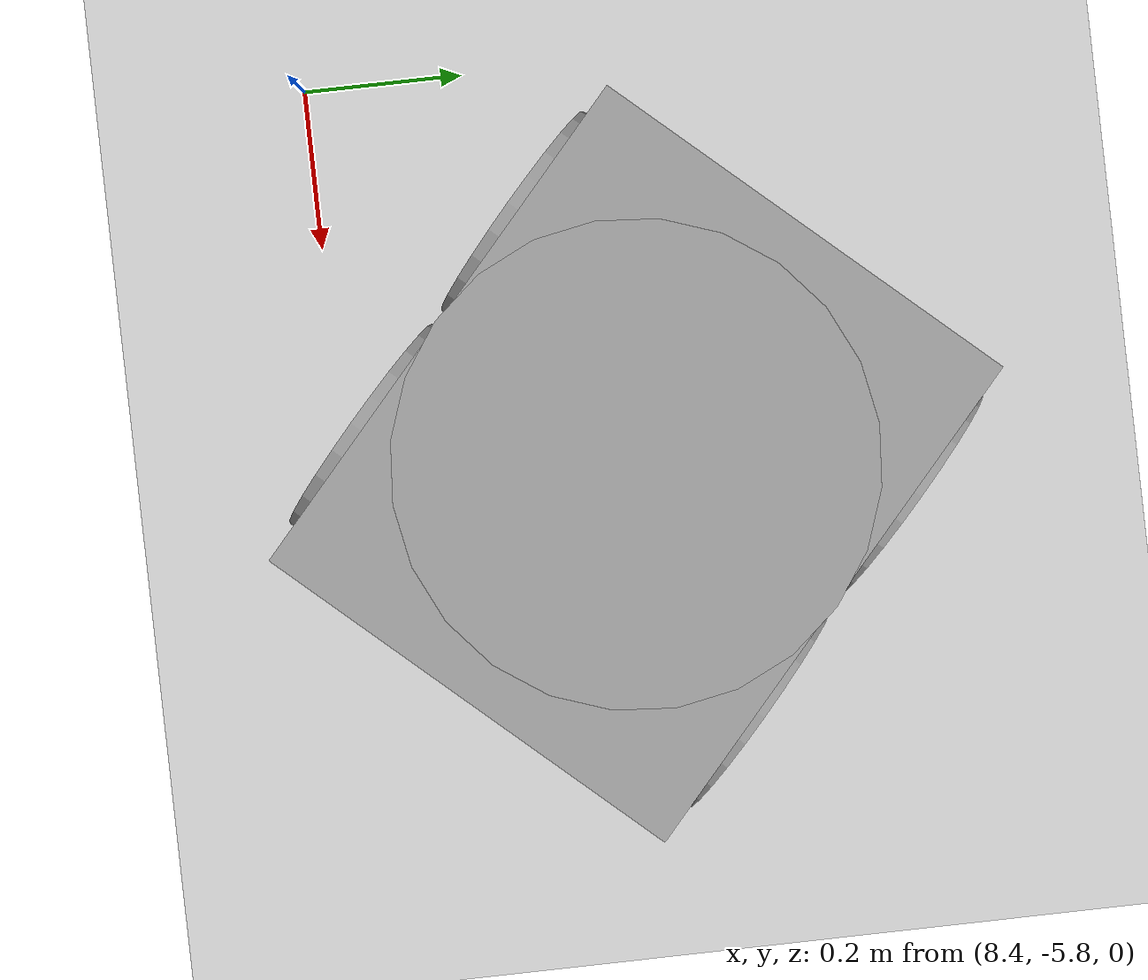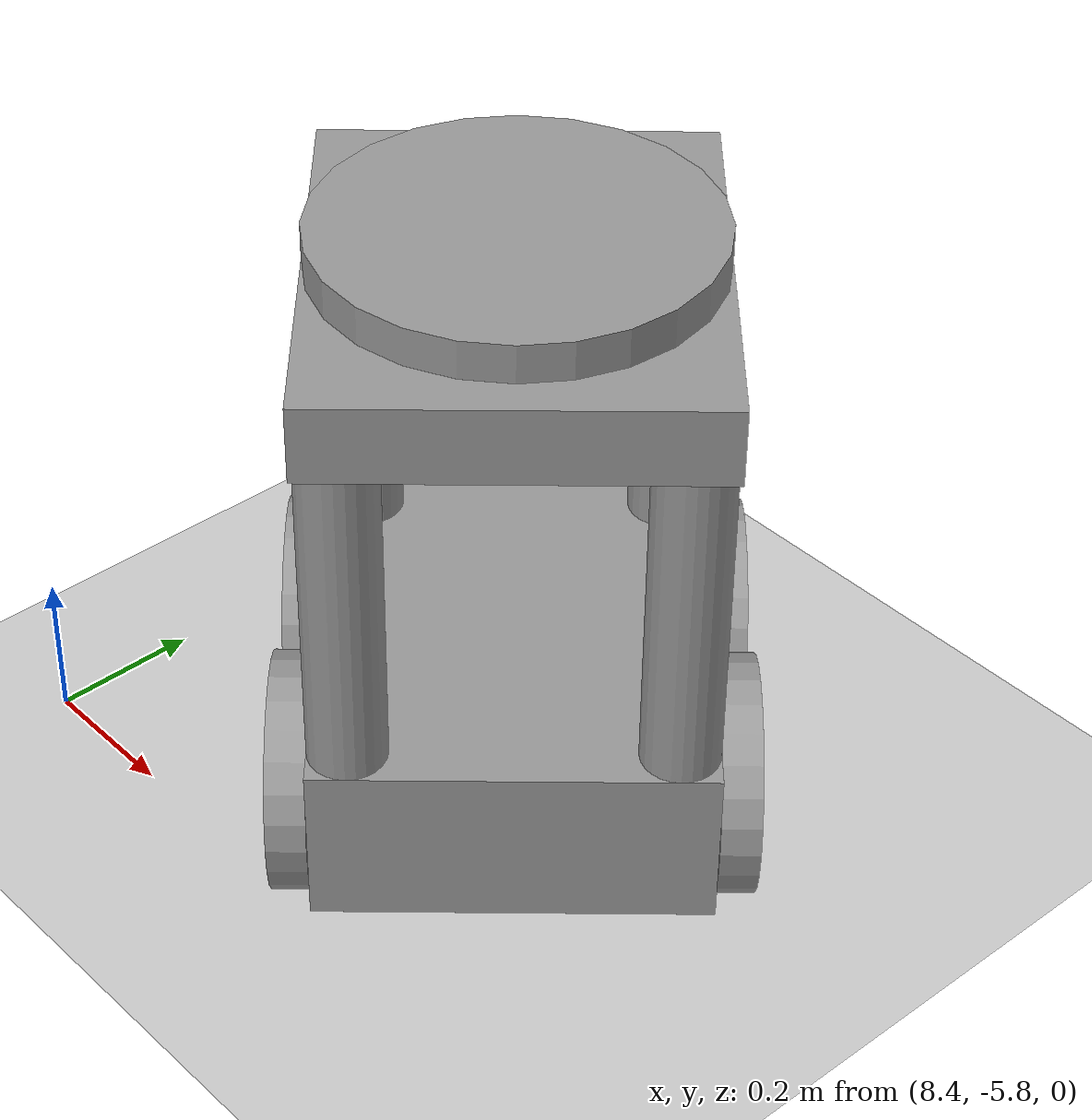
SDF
<sdf version="1.6">
 <world name="default">
  <model name="ground_plane">
   <static>1</static>
   <link name="link">
    <collision name="collision">
     <geometry><plane><normal>0 0 1</normal><size>100 100</size></plane></geometry>
     <surface><friction><ode><mu>100</mu><mu2>50</mu2></ode></friction></surface>
    </collision>
    <visual name="visual">
     <cast_shadows>0</cast_shadows>
     <geometry><plane><normal>0 0 1</normal><size>100 100</size></plane></geometry>
     <material>
      <script><uri>file://media/materials/scripts/gazebo.material</uri><name>Gazebo/Grey</name></script>
     </material>
    </visual>
   </link>
  </model>
  <model name="exp_robot_0">
   <link name="link_0">
    <pose>-0 -0 -0.235909 0 -0 0</pose>
    <inertial>
     <mass>1</mass>
     <inertia>
      <ixx>0.166667</ixx>
      <ixy>0</ixy>
      <ixz>0</ixz>
      <iyy>0.166667</iyy>
      <iyz>0</iyz>
      <izz>0.166667</izz>
     </inertia>
    </inertial>
    <visual name="visual">
     <geometry><box><size>0.6 0.5 0.22</size></box></geometry>
     <material>
      <lighting>1</lighting>
      <script><uri>file://media/materials/scripts/gazebo.material</uri><name>Gazebo/Grey</name></script>
      <ambient>0.1 0.1 0.1 1</ambient>
      <diffuse>0.7 0.7 0.7 1</diffuse>
      <specular>0.01 0.01 0.01 1</specular>
      <emissive>0 0 0 1</emissive>
      <shader type="vertex"><normal_map>__default__</normal_map></shader>
     </material>
    </visual>
    <collision name="collision">
     <geometry><box><size>0.6 0.5 0.22</size></box></geometry>
     <surface>
      <friction>
       <ode><mu>1</mu><mu2>1</mu2><fdir1>0 0 0</fdir1><slip1>0</slip1><slip2>0</slip2></ode>
       <torsional>
        <coefficient>1</coefficient>
        <patch_radius>0</patch_radius>
        <surface_radius>0</surface_radius>
        <use_patch_radius>1</use_patch_radius>
        <ode><slip>0</slip></ode>
       </torsional>
      </friction>
      <bounce><restitution_coefficient>0</restitution_coefficient><threshold>1e+06</threshold></bounce>
      <contact>
       <collide_without_contact>0</collide_without_contact>
       <collide_without_contact_bitmask>1</collide_without_contact_bitmask>
       <collide_bitmask>1</collide_bitmask>
       <ode>
        <soft_cfm>0</soft_cfm>
        <soft_erp>0.2</soft_erp>
        <kp>1e+13</kp>
        <kd>1</kd>
        <max_vel>0.01</max_vel>
        <min_depth>0</min_depth>
       </ode>
       <bullet>
        <split_impulse>1</split_impulse>
        <split_impulse_penetration_threshold>-0.01</split_impulse_penetration_threshold>
        <soft_cfm>0</soft_cfm>
        <soft_erp>0.2</soft_erp>
        <kp>1e+13</kp>
        <kd>1</kd>
       </bullet>
      </contact>
     </surface>
    </collision>
   </link>
   <link name="link_0_clone">
    <pose>0 -0 0.364091 0 -0 0</pose>
    <inertial>
     <mass>1</mass>
     <inertia>
      <ixx>0.166667</ixx>
      <ixy>0</ixy>
      <ixz>0</ixz>
      <iyy>0.166667</iyy>
      <iyz>0</iyz>
      <izz>0.166667</izz>
     </inertia>
    </inertial>
    <visual name="visual">
     <geometry><box><size>0.6 0.5 0.1</size></box></geometry>
     <material>
      <lighting>1</lighting>
      <script><uri>file://media/materials/scripts/gazebo.material</uri><name>Gazebo/Grey</name></script>
      <ambient>0.3 0.3 0.3 1</ambient>
      <diffuse>0.7 0.7 0.7 1</diffuse>
      <specular>0.01 0.01 0.01 1</specular>
      <emissive>0 0 0 1</emissive>
      <shader type="vertex"><normal_map>__default__</normal_map></shader>
     </material>
    </visual>
    <collision name="collision">
     <geometry><box><size>0.6 0.5 0.1</size></box></geometry>
     <surface>
      <friction>
       <ode><mu>1</mu><mu2>1</mu2><fdir1>0 0 0</fdir1><slip1>0</slip1><slip2>0</slip2></ode>
       <torsional>
        <coefficient>1</coefficient>
        <patch_radius>0</patch_radius>
        <surface_radius>0</surface_radius>
        <use_patch_radius>1</use_patch_radius>
        <ode><slip>0</slip></ode>
       </torsional>
      </friction>
      <bounce><restitution_coefficient>0</restitution_coefficient><threshold>1e+06</threshold></bounce>
      <contact>
       <collide_without_contact>0</collide_without_contact>
       <collide_without_contact_bitmask>1</collide_without_contact_bitmask>
       <collide_bitmask>1</collide_bitmask>
       <ode>
        <soft_cfm>0</soft_cfm>
        <soft_erp>0.2</soft_erp>
        <kp>1e+13</kp>
        <kd>1</kd>
        <max_vel>0.01</max_vel>
        <min_depth>0</min_depth>
       </ode>
       <bullet>
        <split_impulse>1</split_impulse>
        <split_impulse_penetration_threshold>-0.01</split_impulse_penetration_threshold>
        <soft_cfm>0</soft_cfm>
        <soft_erp>0.2</soft_erp>
        <kp>1e+13</kp>
        <kd>1</kd>
       </bullet>
      </contact>
     </surface>
    </collision>
   </link>
   <link name="link_1">
    <pose>-0.25 0.2 0.094091 0 -0 0</pose>
    <inertial>
     <mass>1</mass>
     <inertia><ixx>0.145833</ixx><ixy>0</ixy><ixz>0</ixz><iyy>0.145833</iyy><iyz>0</iyz><izz>0.125</izz></inertia>
    </inertial>
    <visual name="visual">
     <geometry><cylinder><radius>0.05</radius><length>0.44</length></cylinder></geometry>
     <material>
      <lighting>1</lighting>
      <script><uri>file://media/materials/scripts/gazebo.material</uri><name>Gazebo/Grey</name></script>
      <ambient>0.3 0.3 0.3 1</ambient>
      <diffuse>0.7 0.7 0.7 1</diffuse>
      <specular>0.01 0.01 0.01 1</specular>
      <emissive>0 0 0 1</emissive>
      <shader type="vertex"><normal_map>__default__</normal_map></shader>
     </material>
    </visual>
    <collision name="collision">
     <geometry><cylinder><radius>0.05</radius><length>0.44</length></cylinder></geometry>
     <surface>
      <friction>
       <ode><mu>1</mu><mu2>1</mu2><fdir1>0 0 0</fdir1><slip1>0</slip1><slip2>0</slip2></ode>
       <torsional>
        <coefficient>1</coefficient>
        <patch_radius>0</patch_radius>
        <surface_radius>0</surface_radius>
        <use_patch_radius>1</use_patch_radius>
        <ode><slip>0</slip></ode>
       </torsional>
      </friction>
      <bounce><restitution_coefficient>0</restitution_coefficient><threshold>1e+06</threshold></bounce>
      <contact>
       <collide_without_contact>0</collide_without_contact>
       <collide_without_contact_bitmask>1</collide_without_contact_bitmask>
       <collide_bitmask>1</collide_bitmask>
       <ode>
        <soft_cfm>0</soft_cfm>
        <soft_erp>0.2</soft_erp>
        <kp>1e+13</kp>
        <kd>1</kd>
        <max_vel>0.01</max_vel>
        <min_depth>0</min_depth>
       </ode>
       <bullet>
        <split_impulse>1</split_impulse>
        <split_impulse_penetration_threshold>-0.01</split_impulse_penetration_threshold>
        <soft_cfm>0</soft_cfm>
        <soft_erp>0.2</soft_erp>
        <kp>1e+13</kp>
        <kd>1</kd>
       </bullet>
      </contact>
     </surface>
    </collision>
   </link>
   <link name="link_1_clone">
    <pose>-0.25 -0.2 0.094091 0 -0 0</pose>
    <inertial>
     <mass>1</mass>
     <inertia><ixx>0.145833</ixx><ixy>0</ixy><ixz>0</ixz><iyy>0.145833</iyy><iyz>0</iyz><izz>0.125</izz></inertia>
    </inertial>
    <visual name="visual">
     <geometry><cylinder><radius>0.05</radius><length>0.44</length></cylinder></geometry>
     <material>
      <lighting>1</lighting>
      <script><uri>file://media/materials/scripts/gazebo.material</uri><name>Gazebo/Grey</name></script>
      <ambient>0.3 0.3 0.3 1</ambient>
      <diffuse>0.7 0.7 0.7 1</diffuse>
      <specular>0.01 0.01 0.01 1</specular>
      <emissive>0 0 0 1</emissive>
      <shader type="vertex"><normal_map>__default__</normal_map></shader>
     </material>
    </visual>
    <collision name="collision">
     <geometry><cylinder><radius>0.05</radius><length>0.44</length></cylinder></geometry>
     <surface>
      <friction>
       <ode><mu>1</mu><mu2>1</mu2><fdir1>0 0 0</fdir1><slip1>0</slip1><slip2>0</slip2></ode>
       <torsional>
        <coefficient>1</coefficient>
        <patch_radius>0</patch_radius>
        <surface_radius>0</surface_radius>
        <use_patch_radius>1</use_patch_radius>
        <ode><slip>0</slip></ode>
       </torsional>
      </friction>
      <bounce><restitution_coefficient>0</restitution_coefficient><threshold>1e+06</threshold></bounce>
      <contact>
       <collide_without_contact>0</collide_without_contact>
       <collide_without_contact_bitmask>1</collide_without_contact_bitmask>
       <collide_bitmask>1</collide_bitmask>
       <ode>
        <soft_cfm>0</soft_cfm>
        <soft_erp>0.2</soft_erp>
        <kp>1e+13</kp>
        <kd>1</kd>
        <max_vel>0.01</max_vel>
        <min_depth>0</min_depth>
       </ode>
       <bullet>
        <split_impulse>1</split_impulse>
        <split_impulse_penetration_threshold>-0.01</split_impulse_penetration_threshold>
        <soft_cfm>0</soft_cfm>
        <soft_erp>0.2</soft_erp>
        <kp>1e+13</kp>
        <kd>1</kd>
       </bullet>
      </contact>
     </surface>
    </collision>
   </link>
   <link name="link_1_clone_0">
    <pose>0.25 -0.2 0.094091 0 -0 0</pose>
    <inertial>
     <mass>1</mass>
     <inertia><ixx>0.145833</ixx><ixy>0</ixy><ixz>0</ixz><iyy>0.145833</iyy><iyz>0</iyz><izz>0.125</izz></inertia>
    </inertial>
    <visual name="visual">
     <geometry><cylinder><radius>0.05</radius><length>0.44</length></cylinder></geometry>
     <material>
      <lighting>1</lighting>
      <script><uri>file://media/materials/scripts/gazebo.material</uri><name>Gazebo/Grey</name></script>
      <ambient>0.3 0.3 0.3 1</ambient>
      <diffuse>0.7 0.7 0.7 1</diffuse>
      <specular>0.01 0.01 0.01 1</specular>
      <emissive>0 0 0 1</emissive>
      <shader type="vertex"><normal_map>__default__</normal_map></shader>
     </material>
    </visual>
    <collision name="collision">
     <geometry><cylinder><radius>0.05</radius><length>0.44</length></cylinder></geometry>
     <surface>
      <friction>
       <ode><mu>1</mu><mu2>1</mu2><fdir1>0 0 0</fdir1><slip1>0</slip1><slip2>0</slip2></ode>
       <torsional>
        <coefficient>1</coefficient>
        <patch_radius>0</patch_radius>
        <surface_radius>0</surface_radius>
        <use_patch_radius>1</use_patch_radius>
        <ode><slip>0</slip></ode>
       </torsional>
      </friction>
      <bounce><restitution_coefficient>0</restitution_coefficient><threshold>1e+06</threshold></bounce>
      <contact>
       <collide_without_contact>0</collide_without_contact>
       <collide_without_contact_bitmask>1</collide_without_contact_bitmask>
       <collide_bitmask>1</collide_bitmask>
       <ode>
        <soft_cfm>0</soft_cfm>
        <soft_erp>0.2</soft_erp>
        <kp>1e+13</kp>
        <kd>1</kd>
        <max_vel>0.01</max_vel>
        <min_depth>0</min_depth>
       </ode>
       <bullet>
        <split_impulse>1</split_impulse>
        <split_impulse_penetration_threshold>-0.01</split_impulse_penetration_threshold>
        <soft_cfm>0</soft_cfm>
        <soft_erp>0.2</soft_erp>
        <kp>1e+13</kp>
        <kd>1</kd>
       </bullet>
      </contact>
     </surface>
    </collision>
   </link>
   <link name="link_1_clone_1">
    <pose>0.25 0.2 0.094091 0 -0 0</pose>
    <inertial>
     <mass>1</mass>
     <inertia><ixx>0.145833</ixx><ixy>0</ixy><ixz>0</ixz><iyy>0.145833</iyy><iyz>0</iyz><izz>0.125</izz></inertia>
    </inertial>
    <visual name="visual">
     <geometry><cylinder><radius>0.05</radius><length>0.44</length></cylinder></geometry>
     <material>
      <lighting>1</lighting>
      <script><uri>file://media/materials/scripts/gazebo.material</uri><name>Gazebo/Grey</name></script>
      <ambient>0.3 0.3 0.3 1</ambient>
      <diffuse>0.7 0.7 0.7 1</diffuse>
      <specular>0.01 0.01 0.01 1</specular>
      <emissive>0 0 0 1</emissive>
      <shader type="vertex"><normal_map>__default__</normal_map></shader>
     </material>
    </visual>
    <collision name="collision">
     <geometry><cylinder><radius>0.05</radius><length>0.44</length></cylinder></geometry>
     <surface>
      <friction>
       <ode><mu>1</mu><mu2>1</mu2><fdir1>0 0 0</fdir1><slip1>0</slip1><slip2>0</slip2></ode>
       <torsional>
        <coefficient>1</coefficient>
        <patch_radius>0</patch_radius>
        <surface_radius>0</surface_radius>
        <use_patch_radius>1</use_patch_radius>
        <ode><slip>0</slip></ode>
       </torsional>
      </friction>
      <bounce><restitution_coefficient>0</restitution_coefficient><threshold>1e+06</threshold></bounce>
      <contact>
       <collide_without_contact>0</collide_without_contact>
       <collide_without_contact_bitmask>1</collide_without_contact_bitmask>
       <collide_bitmask>1</collide_bitmask>
       <ode>
        <soft_cfm>0</soft_cfm>
        <soft_erp>0.2</soft_erp>
        <kp>1e+13</kp>
        <kd>1</kd>
        <max_vel>0.01</max_vel>
        <min_depth>0</min_depth>
       </ode>
       <bullet>
        <split_impulse>1</split_impulse>
        <split_impulse_penetration_threshold>-0.01</split_impulse_penetration_threshold>
        <soft_cfm>0</soft_cfm>
        <soft_erp>0.2</soft_erp>
        <kp>1e+13</kp>
        <kd>1</kd>
       </bullet>
      </contact>
     </surface>
    </collision>
   </link>
   <link name="link_2">
    <pose>-0 0 0.439091 0 -0 0</pose>
    <inertial>
     <mass>1</mass>
     <inertia><ixx>0.145833</ixx><ixy>0</ixy><ixz>0</ixz><iyy>0.145833</iyy><iyz>0</iyz><izz>0.125</izz></inertia>
    </inertial>
    <visual name="visual">
     <geometry><cylinder><radius>0.25</radius><length>0.05</length></cylinder></geometry>
     <material>
      <lighting>1</lighting>
      <script><uri>file://media/materials/scripts/gazebo.material</uri><name>Gazebo/Grey</name></script>
      <ambient>0.3 0.3 0.3 1</ambient>
      <diffuse>0.7 0.7 0.7 1</diffuse>
      <specular>0.01 0.01 0.01 1</specular>
      <emissive>0 0 0 1</emissive>
      <shader type="vertex"><normal_map>__default__</normal_map></shader>
     </material>
    </visual>
    <collision name="collision">
     <geometry><cylinder><radius>0.25</radius><length>0.05</length></cylinder></geometry>
     <surface>
      <friction>
       <ode><mu>1</mu><mu2>1</mu2><fdir1>0 0 0</fdir1><slip1>0</slip1><slip2>0</slip2></ode>
       <torsional>
        <coefficient>1</coefficient>
        <patch_radius>0</patch_radius>
        <surface_radius>0</surface_radius>
        <use_patch_radius>1</use_patch_radius>
        <ode><slip>0</slip></ode>
       </torsional>
      </friction>
      <bounce><restitution_coefficient>0</restitution_coefficient><threshold>1e+06</threshold></bounce>
      <contact>
       <collide_without_contact>0</collide_without_contact>
       <collide_without_contact_bitmask>1</collide_without_contact_bitmask>
       <collide_bitmask>1</collide_bitmask>
       <ode>
        <soft_cfm>0</soft_cfm>
        <soft_erp>0.2</soft_erp>
        <kp>1e+13</kp>
        <kd>1</kd>
        <max_vel>0.01</max_vel>
        <min_depth>0</min_depth>
       </ode>
       <bullet>
        <split_impulse>1</split_impulse>
        <split_impulse_penetration_threshold>-0.01</split_impulse_penetration_threshold>
        <soft_cfm>0</soft_cfm>
        <soft_erp>0.2</soft_erp>
        <kp>1e+13</kp>
        <kd>1</kd>
       </bullet>
      </contact>
     </surface>
    </collision>
   </link>
   <link name="link_3">
    <pose>0.16 -0.275014 -0.235909 1.5707 -0 0</pose>
    <inertial>
     <mass>1</mass>
     <inertia><ixx>0.145833</ixx><ixy>0</ixy><ixz>0</ixz><iyy>0.145833</iyy><iyz>0</iyz><izz>0.125</izz></inertia>
    </inertial>
    <visual name="visual">
     <geometry><cylinder><radius>0.15</radius><length>0.05</length></cylinder></geometry>
     <material>
      <lighting>1</lighting>
      <script><uri>file://media/materials/scripts/gazebo.material</uri><name>Gazebo/Grey</name></script>
      <ambient>0.3 0.3 0.3 1</ambient>
      <diffuse>0.7 0.7 0.7 1</diffuse>
      <specular>0.01 0.01 0.01 1</specular>
      <emissive>0 0 0 1</emissive>
      <shader type="vertex"><normal_map>__default__</normal_map></shader>
     </material>
    </visual>
    <collision name="collision">
     <geometry><cylinder><radius>0.15</radius><length>0.05</length></cylinder></geometry>
     <surface>
      <friction>
       <ode><mu>1</mu><mu2>1</mu2><fdir1>0 0 0</fdir1><slip1>0</slip1><slip2>0</slip2></ode>
       <torsional>
        <coefficient>1</coefficient>
        <patch_radius>0</patch_radius>
        <surface_radius>0</surface_radius>
        <use_patch_radius>1</use_patch_radius>
        <ode><slip>0</slip></ode>
       </torsional>
      </friction>
      <bounce><restitution_coefficient>0</restitution_coefficient><threshold>1e+06</threshold></bounce>
      <contact>
       <collide_without_contact>0</collide_without_contact>
       <collide_without_contact_bitmask>1</collide_without_contact_bitmask>
       <collide_bitmask>1</collide_bitmask>
       <ode>
        <soft_cfm>0</soft_cfm>
        <soft_erp>0.2</soft_erp>
        <kp>1e+13</kp>
        <kd>1</kd>
        <max_vel>0.01</max_vel>
        <min_depth>0</min_depth>
       </ode>
       <bullet>
        <split_impulse>1</split_impulse>
        <split_impulse_penetration_threshold>-0.01</split_impulse_penetration_threshold>
        <soft_cfm>0</soft_cfm>
        <soft_erp>0.2</soft_erp>
        <kp>1e+13</kp>
        <kd>1</kd>
       </bullet>
      </contact>
     </surface>
    </collision>
   </link>
   <link name="link_3_clone">
    <pose>0.16 0.275014 -0.235909 1.5707 -0 0</pose>
    <inertial>
     <mass>1</mass>
     <inertia><ixx>0.145833</ixx><ixy>0</ixy><ixz>0</ixz><iyy>0.145833</iyy><iyz>0</iyz><izz>0.125</izz></inertia>
    </inertial>
    <visual name="visual">
     <geometry><cylinder><radius>0.15</radius><length>0.05</length></cylinder></geometry>
     <material>
      <lighting>1</lighting>
      <script><uri>file://media/materials/scripts/gazebo.material</uri><name>Gazebo/Grey</name></script>
      <ambient>0.3 0.3 0.3 1</ambient>
      <diffuse>0.7 0.7 0.7 1</diffuse>
      <specular>0.01 0.01 0.01 1</specular>
      <emissive>0 0 0 1</emissive>
      <shader type="vertex"><normal_map>__default__</normal_map></shader>
     </material>
    </visual>
    <collision name="collision">
     <geometry><cylinder><radius>0.15</radius><length>0.05</length></cylinder></geometry>
     <surface>
      <friction>
       <ode><mu>1</mu><mu2>1</mu2><fdir1>0 0 0</fdir1><slip1>0</slip1><slip2>0</slip2></ode>
       <torsional>
        <coefficient>1</coefficient>
        <patch_radius>0</patch_radius>
        <surface_radius>0</surface_radius>
        <use_patch_radius>1</use_patch_radius>
        <ode><slip>0</slip></ode>
       </torsional>
      </friction>
      <bounce><restitution_coefficient>0</restitution_coefficient><threshold>1e+06</threshold></bounce>
      <contact>
       <collide_without_contact>0</collide_without_contact>
       <collide_without_contact_bitmask>1</collide_without_contact_bitmask>
       <collide_bitmask>1</collide_bitmask>
       <ode>
        <soft_cfm>0</soft_cfm>
        <soft_erp>0.2</soft_erp>
        <kp>1e+13</kp>
        <kd>1</kd>
        <max_vel>0.01</max_vel>
        <min_depth>0</min_depth>
       </ode>
       <bullet>
        <split_impulse>1</split_impulse>
        <split_impulse_penetration_threshold>-0.01</split_impulse_penetration_threshold>
        <soft_cfm>0</soft_cfm>
        <soft_erp>0.2</soft_erp>
        <kp>1e+13</kp>
        <kd>1</kd>
       </bullet>
      </contact>
     </surface>
    </collision>
   </link>
   <link name="link_3_clone_0">
    <pose>-0.16 0.275014 -0.235909 1.5707 -0 0</pose>
    <inertial>
     <mass>1</mass>
     <inertia><ixx>0.145833</ixx><ixy>0</ixy><ixz>0</ixz><iyy>0.145833</iyy><iyz>0</iyz><izz>0.125</izz></inertia>
    </inertial>
    <visual name="visual">
     <geometry><cylinder><radius>0.15</radius><length>0.05</length></cylinder></geometry>
     <material>
      <lighting>1</lighting>
      <script><uri>file://media/materials/scripts/gazebo.material</uri><name>Gazebo/Grey</name></script>
      <ambient>0.3 0.3 0.3 1</ambient>
      <diffuse>0.7 0.7 0.7 1</diffuse>
      <specular>0.01 0.01 0.01 1</specular>
      <emissive>0 0 0 1</emissive>
      <shader type="vertex"><normal_map>__default__</normal_map></shader>
     </material>
    </visual>
    <collision name="collision">
     <geometry><cylinder><radius>0.15</radius><length>0.05</length></cylinder></geometry>
     <surface>
      <friction>
       <ode><mu>1</mu><mu2>1</mu2><fdir1>0 0 0</fdir1><slip1>0</slip1><slip2>0</slip2></ode>
       <torsional>
        <coefficient>1</coefficient>
        <patch_radius>0</patch_radius>
        <surface_radius>0</surface_radius>
        <use_patch_radius>1</use_patch_radius>
        <ode><slip>0</slip></ode>
       </torsional>
      </friction>
      <bounce><restitution_coefficient>0</restitution_coefficient><threshold>1e+06</threshold></bounce>
      <contact>
       <collide_without_contact>0</collide_without_contact>
       <collide_without_contact_bitmask>1</collide_without_contact_bitmask>
       <collide_bitmask>1</collide_bitmask>
       <ode>
        <soft_cfm>0</soft_cfm>
        <soft_erp>0.2</soft_erp>
        <kp>1e+13</kp>
        <kd>1</kd>
        <max_vel>0.01</max_vel>
        <min_depth>0</min_depth>
       </ode>
       <bullet>
        <split_impulse>1</split_impulse>
        <split_impulse_penetration_threshold>-0.01</split_impulse_penetration_threshold>
        <soft_cfm>0</soft_cfm>
        <soft_erp>0.2</soft_erp>
        <kp>1e+13</kp>
        <kd>1</kd>
       </bullet>
      </contact>
     </surface>
    </collision>
   </link>
   <link name="link_3_clone_1">
    <pose>-0.16 -0.275014 -0.235909 1.5707 -0 0</pose>
    <inertial>
     <mass>1</mass>
     <inertia><ixx>0.145833</ixx><ixy>0</ixy><ixz>0</ixz><iyy>0.145833</iyy><iyz>0</iyz><izz>0.125</izz></inertia>
    </inertial>
    <visual name="visual">
     <geometry><cylinder><radius>0.15</radius><length>0.05</length></cylinder></geometry>
     <material>
      <lighting>1</lighting>
      <script><uri>file://media/materials/scripts/gazebo.material</uri><name>Gazebo/Grey</name></script>
      <ambient>0.3 0.3 0.3 1</ambient>
      <diffuse>0.7 0.7 0.7 1</diffuse>
      <specular>0.01 0.01 0.01 1</specular>
      <emissive>0 0 0 1</emissive>
      <shader type="vertex"><normal_map>__default__</normal_map></shader>
     </material>
    </visual>
    <collision name="collision">
     <geometry><cylinder><radius>0.15</radius><length>0.05</length></cylinder></geometry>
     <surface>
      <friction>
       <ode><mu>1</mu><mu2>1</mu2><fdir1>0 0 0</fdir1><slip1>0</slip1><slip2>0</slip2></ode>
       <torsional>
        <coefficient>1</coefficient>
        <patch_radius>0</patch_radius>
        <surface_radius>0</surface_radius>
        <use_patch_radius>1</use_patch_radius>
        <ode><slip>0</slip></ode>
       </torsional>
      </friction>
      <bounce><restitution_coefficient>0</restitution_coefficient><threshold>1e+06</threshold></bounce>
      <contact>
       <collide_without_contact>0</collide_without_contact>
       <collide_without_contact_bitmask>1</collide_without_contact_bitmask>
       <collide_bitmask>1</collide_bitmask>
       <ode>
        <soft_cfm>0</soft_cfm>
        <soft_erp>0.2</soft_erp>
        <kp>1e+13</kp>
        <kd>1</kd>
        <max_vel>0.01</max_vel>
        <min_depth>0</min_depth>
       </ode>
       <bullet>
        <split_impulse>1</split_impulse>
        <split_impulse_penetration_threshold>-0.01</split_impulse_penetration_threshold>
        <soft_cfm>0</soft_cfm>
        <soft_erp>0.2</soft_erp>
        <kp>1e+13</kp>
        <kd>1</kd>
       </bullet>
      </contact>
     </surface>
    </collision>
   </link>
   <joint name="link_0_JOINT_0" type="fixed">
    <parent>link_0</parent>
    <child>link_1_clone_1</child>
    <physics>
     <ode><limit><cfm>0</cfm><erp>0.2</erp></limit><suspension><cfm>0</cfm><erp>0.2</erp></suspension></ode>
    </physics>
   </joint>
   <joint name="link_0_JOINT_1" type="fixed">
    <parent>link_0</parent>
    <child>link_1_clone_0</child>
    <physics>
     <ode><limit><cfm>0</cfm><erp>0.2</erp></limit><suspension><cfm>0</cfm><erp>0.2</erp></suspension></ode>
    </physics>
   </joint>
   <joint name="link_0_JOINT_2" type="fixed">
    <parent>link_0</parent>
    <child>link_1_clone</child>
    <physics>
     <ode><limit><cfm>0</cfm><erp>0.2</erp></limit><suspension><cfm>0</cfm><erp>0.2</erp></suspension></ode>
    </physics>
   </joint>
   <joint name="link_0_JOINT_3" type="fixed">
    <parent>link_0</parent>
    <child>link_1</child>
    <physics>
     <ode><limit><cfm>0</cfm><erp>0.2</erp></limit><suspension><cfm>0</cfm><erp>0.2</erp></suspension></ode>
    </physics>
   </joint>
   <joint name="link_0_JOINT_4" type="fixed">
    <parent>link_0</parent>
    <child>link_0_clone</child>
    <physics>
     <ode><limit><cfm>0</cfm><erp>0.2</erp></limit><suspension><cfm>0</cfm><erp>0.2</erp></suspension></ode>
    </physics>
   </joint>
   <joint name="link_0_JOINT_6" type="revolute">
    <parent>link_0</parent>
    <child>link_3</child>
    <axis>
     <xyz>0 0 1</xyz>
     <use_parent_model_frame>0</use_parent_model_frame>
     <limit>
      <lower>-1.79769e+308</lower>
      <upper>1.79769e+308</upper>
      <effort>-1</effort>
      <velocity>-1</velocity>
     </limit>
     <dynamics>
      <spring_reference>0</spring_reference>
      <spring_stiffness>0</spring_stiffness>
      <damping>0</damping>
      <friction>0</friction>
     </dynamics>
    </axis>
    <physics>
     <ode><limit><cfm>0</cfm><erp>0.2</erp></limit><suspension><cfm>0</cfm><erp>0.2</erp></suspension></ode>
    </physics>
   </joint>
   <joint name="link_0_JOINT_7" type="revolute">
    <parent>link_0</parent>
    <child>link_3_clone_1</child>
    <axis>
     <xyz>0 0 1</xyz>
     <use_parent_model_frame>0</use_parent_model_frame>
     <limit>
      <lower>-1.79769e+308</lower>
      <upper>1.79769e+308</upper>
      <effort>-1</effort>
      <velocity>-1</velocity>
     </limit>
     <dynamics>
      <spring_reference>0</spring_reference>
      <spring_stiffness>0</spring_stiffness>
      <damping>0</damping>
      <friction>0</friction>
     </dynamics>
    </axis>
    <physics>
     <ode><limit><cfm>0</cfm><erp>0.2</erp></limit><suspension><cfm>0</cfm><erp>0.2</erp></suspension></ode>
    </physics>
   </joint>
   <joint name="link_0_JOINT_8" type="revolute">
    <parent>link_0</parent>
    <child>link_3_clone</child>
    <axis>
     <xyz>0 0 1</xyz>
     <use_parent_model_frame>0</use_parent_model_frame>
     <limit>
      <lower>-1.79769e+308</lower>
      <upper>1.79769e+308</upper>
      <effort>-1</effort>
      <velocity>-1</velocity>
     </limit>
     <dynamics>
      <spring_reference>0</spring_reference>
      <spring_stiffness>0</spring_stiffness>
      <damping>0</damping>
      <friction>0</friction>
     </dynamics>
    </axis>
    <physics>
     <ode><limit><cfm>0</cfm><erp>0.2</erp></limit><suspension><cfm>0</cfm><erp>0.2</erp></suspension></ode>
    </physics>
   </joint>
   <joint name="link_0_JOINT_9" type="revolute">
    <parent>link_0</parent>
    <child>link_3_clone_0</child>
    <axis>
     <xyz>0 0 1</xyz>
     <use_parent_model_frame>0</use_parent_model_frame>
     <limit>
      <lower>-1.79769e+308</lower>
      <upper>1.79769e+308</upper>
      <effort>-1</effort>
      <velocity>-1</velocity>
     </limit>
     <dynamics>
      <spring_reference>0</spring_reference>
      <spring_stiffness>0</spring_stiffness>
      <damping>0</damping>
      <friction>0</friction>
     </dynamics>
    </axis>
    <physics>
     <ode><limit><cfm>0</cfm><erp>0.2</erp></limit><suspension><cfm>0</cfm><erp>0.2</erp></suspension></ode>
    </physics>
   </joint>
   <joint name="link_0_clone_JOINT_5" type="revolute">
    <parent>link_0_clone</parent>
    <child>link_2</child>
    <axis>
     <xyz>0 0 1</xyz>
     <use_parent_model_frame>0</use_parent_model_frame>
     <limit>
      <lower>-1.79769e+308</lower>
      <upper>1.79769e+308</upper>
      <effort>-1</effort>
      <velocity>-1</velocity>
     </limit>
     <dynamics>
      <spring_reference>0</spring_reference>
      <spring_stiffness>0</spring_stiffness>
      <damping>0</damping>
      <friction>0</friction>
     </dynamics>
    </axis>
    <physics>
     <ode><limit><cfm>0</cfm><erp>0.2</erp></limit><suspension><cfm>0</cfm><erp>0.2</erp></suspension></ode>
    </physics>
   </joint>
   <static>0</static>
   <pose>8.90858 -5.43281 0.385912 3e-06 7e-06 -0.729191</pose>
  </model>
 </world>
</sdf>
